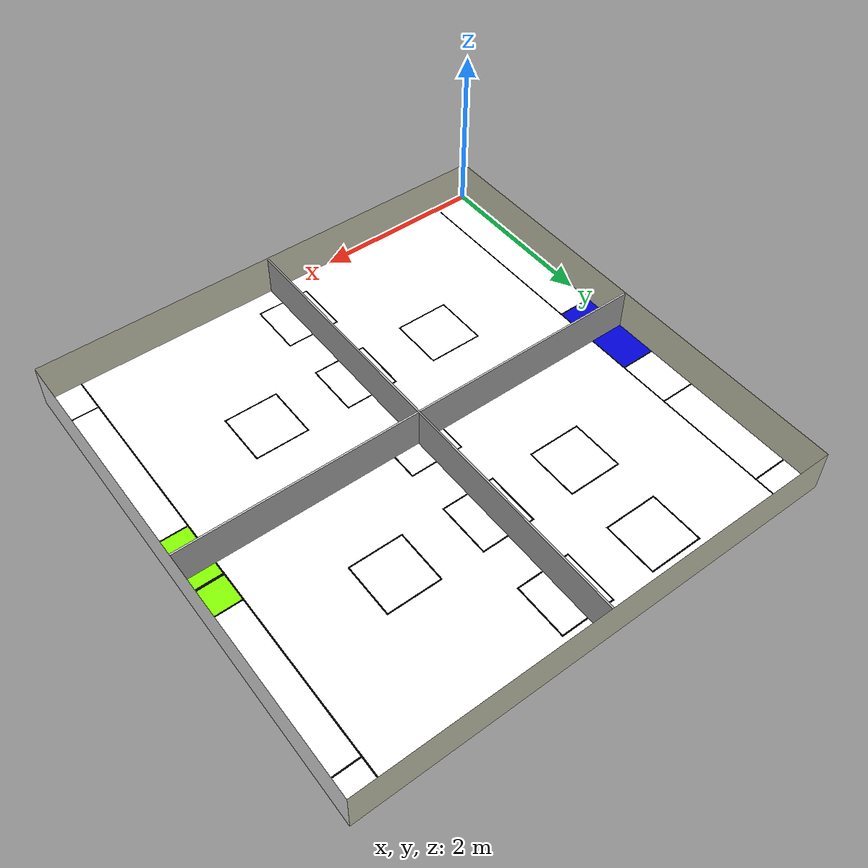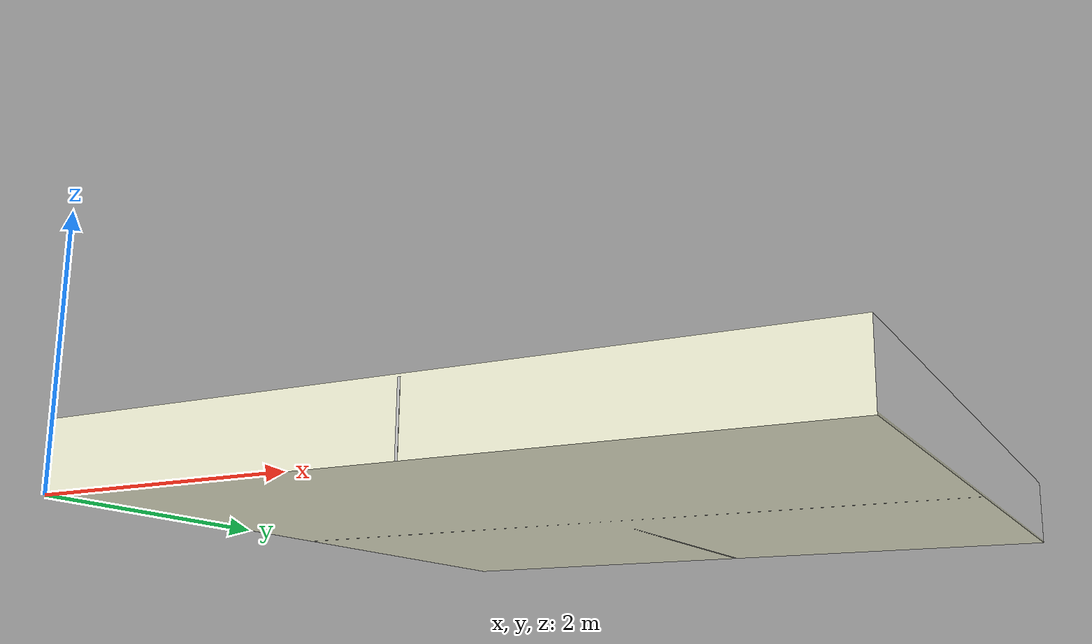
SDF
<?xml version="1.0" ?>
<sdf version="1.4">
  <model name="llsf_field">
    <static>true</static>
    <link name="field_link">
      <visual name='visual'>
	<pose>5.6 0 0 0 0 1.57</pose>
	<geometry>
	  <mesh>
	    <uri>model://llsf_field/RobotinoFeld_leer.dae</uri>
	    <scale>1.0 1.0 1.0</scale>
	  </mesh>
	</geometry>
	<cast_shadows>false</cast_shadows>
      </visual>
      <collision name="collision_ground">
	<pose>2.8 2.8 0.01 0 0 0 </pose>
        <geometry>
          <box>
            <size>5.6 5.6 0.02</size>
          </box>
        </geometry>
        <surface>
          <friction>
            <ode>
              <mu>100</mu>
              <mu2>50</mu2>
            </ode>
          </friction>
        </surface>
      </collision>
      <collision name="collision0">
        <pose>2.8 0 0.25 0 0 0 </pose>
	<geometry>
          <box>
            <size>5.6 0.02 0.5</size>
          </box>
        </geometry>
        <surface>
          <friction>
            <ode>
              <mu>100</mu>
              <mu2>50</mu2>
            </ode>
          </friction>
        </surface>
      </collision>
      <collision name="collision1">
        <pose>0 2.8 0.25 0 0 0 </pose>
	<geometry>
          <box>
            <size>0.02 5.6 0.5</size>
          </box>
        </geometry>
        <surface>
          <friction>
            <ode>
              <mu>100</mu>
              <mu2>50</mu2>
            </ode>
          </friction>
        </surface>
      </collision>
      <collision name="collision2">
        <pose>5.6 2.8 0.25 0 0 0 </pose>
	<geometry>
          <box>
            <size>0.02 5.6 0.5</size>
          </box>
        </geometry>
        <surface>
          <friction>
            <ode>
              <mu>100</mu>
              <mu2>50</mu2>
            </ode>
          </friction>
        </surface>
      </collision>
      <collision name="collision3">
        <pose>2.8 5.6 0.25 0 0 0 </pose>
	<geometry>
          <box>
            <size>5.6 0.02 0.5</size>
          </box>
        </geometry>
        <surface>
          <friction>
            <ode>
              <mu>100</mu>
              <mu2>50</mu2>
            </ode>
          </friction>
        </surface>
      </collision>

      <!-- Quater boundaries -->
      <collision name="split1">
        <pose>2.8 2.8 0.25 0 0 0 </pose>
	<geometry>
          <box>
            <size>5.6 0.02 0.5</size>
          </box>
        </geometry>
        <surface>
          <friction>
            <ode>
              <mu>100</mu>
              <mu2>50</mu2>
            </ode>
          </friction>
        </surface>
      </collision>
      <visual name="visual_split1">
        <pose>2.8 2.8 0.25 0 0 0 </pose>
	<geometry>
          <box>
            <size>5.6 0.02 0.5</size>
          </box>
        </geometry>
      </visual>
      <collision name="split2">
        <pose>2.8 2.8 0.25 0 0 0 </pose>
	<geometry>
          <box>
            <size>0.02 5.6 0.5</size>
          </box>
        </geometry>
        <surface>
          <friction>
            <ode>
              <mu>100</mu>
              <mu2>50</mu2>
            </ode>
          </friction>
        </surface>
      </collision>
      <visual name="visual_split2">
        <pose>2.8 2.8 0.25 0 0 0 </pose>
	<geometry>
          <box>
            <size>0.02 5.6 0.5</size>
          </box>
        </geometry>
      </visual>
    </link>
  </model>
</sdf>
